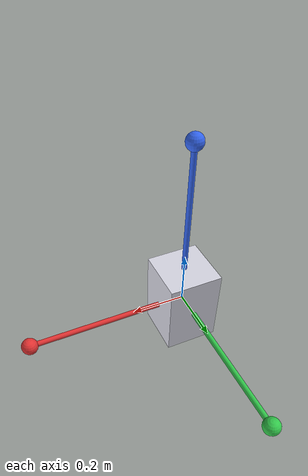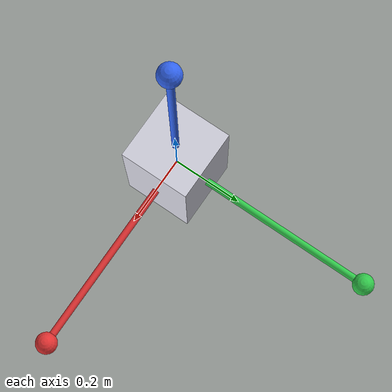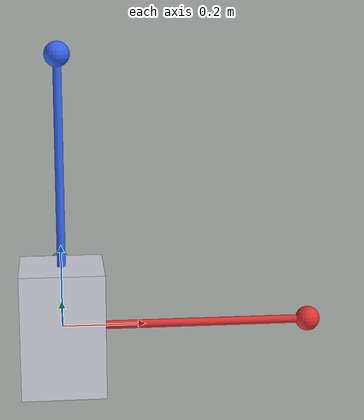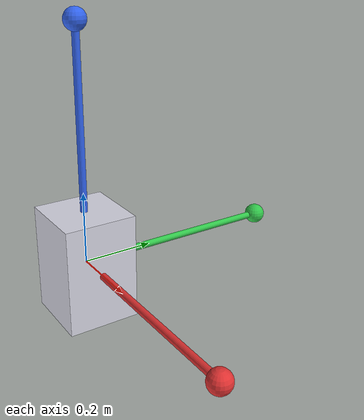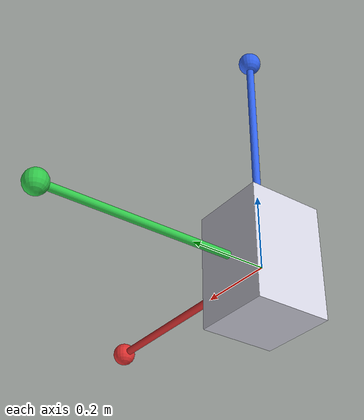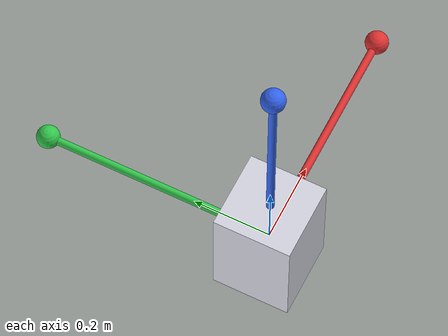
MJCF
<mujoco model="sat_booms">
  <compiler angle="degree" autolimits="true"/>
  <option timestep="0.002" gravity="0 0 0" integrator="implicitfast"/>

  <visual>
    <global offwidth="1280" offheight="720"/>
  </visual>

  <asset>
    <texture type="skybox" builtin="gradient" rgb1="0.05 0.05 0.12" rgb2="0 0 0" width="512" height="512"/>
    <material name="bus_mat"  rgba="0.85 0.85 0.9 1"/>
    <material name="boom_x"   rgba="0.9 0.2 0.2 1"/>
    <material name="boom_y"   rgba="0.2 0.8 0.3 1"/>
    <material name="boom_z"   rgba="0.2 0.4 0.95 1"/>
  </asset>

  <default>
    <joint type="hinge" limited="true" range="-90 90" damping="0.01" armature="0.001"/>
    <geom contype="0" conaffinity="0"/>   <!-- no contacts needed in free space -->
    <motor ctrlrange="-0.5 0.5" ctrllimited="true"/>
  </default>

  <worldbody>
    <light pos="2 -2 3" dir="-1 1 -1.5" diffuse="0.9 0.9 0.9"/>

    <!-- Satellite bus: 0.2 x 0.2 x 0.3 m, 10 kg -->
    <body name="bus" pos="0 0 0">
      <freejoint name="bus_free"/>
      <geom name="bus_box" type="box" size="0.1 0.1 0.15" mass="10" material="bus_mat"/>
      <site name="imu" pos="0 0 0" size="0.01"/>

      <!-- Boom X: on +x face, extends along +x, swings about z (in the x-y plane) -->
      <body name="boom_x" pos="0.1 0 0">
        <joint name="hinge_x" axis="0 0 1"/>
        <geom type="capsule" fromto="0 0 0 0.5 0 0" size="0.01" mass="0.4" material="boom_x"/>
        <geom type="sphere" pos="0.5 0 0" size="0.03" mass="0.3" material="boom_x"/>
      </body>

      <!-- Boom Y: on +y face, extends along +y, swings about x (in the y-z plane) -->
      <body name="boom_y" pos="0 0.1 0">
        <joint name="hinge_y" axis="1 0 0"/>
        <geom type="capsule" fromto="0 0 0 0 0.5 0" size="0.01" mass="0.4" material="boom_y"/>
        <geom type="sphere" pos="0 0.5 0" size="0.03" mass="0.3" material="boom_y"/>
      </body>

      <!-- Boom Z: on +z face, extends along +z, swings about y (in the z-x plane) -->
      <body name="boom_z" pos="0 0 0.15">
        <joint name="hinge_z" axis="0 1 0"/>
        <geom type="capsule" fromto="0 0 0 0 0 0.5" size="0.01" mass="0.4" material="boom_z"/>
        <geom type="sphere" pos="0 0 0.5" size="0.03" mass="0.3" material="boom_z"/>
      </body>
    </body>
  </worldbody>

  <actuator>
    <motor name="act_x" joint="hinge_x" gear="1"/>
    <motor name="act_y" joint="hinge_y" gear="1"/>
    <motor name="act_z" joint="hinge_z" gear="1"/>
  </actuator>

  <sensor>
    <gyro        name="gyro"     site="imu"/>
    <framequat   name="quat"     objtype="site" objname="imu"/>
    <jointpos    name="q_x"      joint="hinge_x"/>
    <jointpos    name="q_y"      joint="hinge_y"/>
    <jointpos    name="q_z"      joint="hinge_z"/>
    <jointvel    name="qd_x"     joint="hinge_x"/>
    <jointvel    name="qd_y"     joint="hinge_y"/>
    <jointvel    name="qd_z"     joint="hinge_z"/>
  </sensor>
</mujoco>
